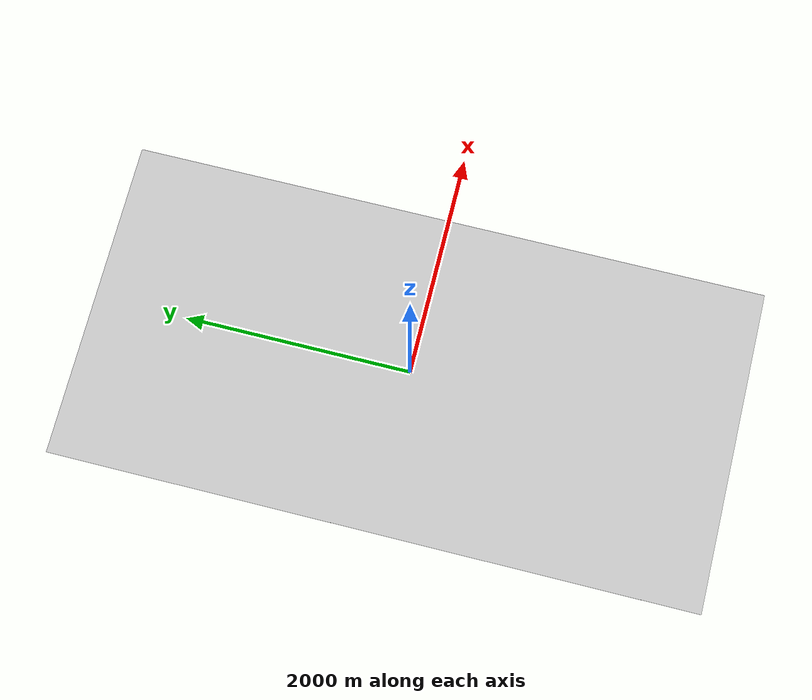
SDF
<?xml version="1.0" ?>
<sdf version="1.5">
  <model name="ATLAS_ground_big">
    <static>true</static>
    <link name="floor">
      <collision name="collision">
        <geometry>
          <box>
            <size>2838.46 5647.18 .1</size>
          </box>
        </geometry>
      </collision>
      <visual name="visual">
        <cast_shadows>false</cast_shadows>
        <geometry>
          <box>
            <size>2838.46 5647.18 .1</size>
          </box>
        </geometry>
        <material>
          <script>
            <uri>model://ATLAS_ground_big/materials/scripts</uri>
            <uri>model://ATLAS_ground_big/materials/textures</uri>
            <name>ATLAS_ground_big</name>
          </script>
        </material>
      </visual>
    </link>
  </model>
</sdf>
